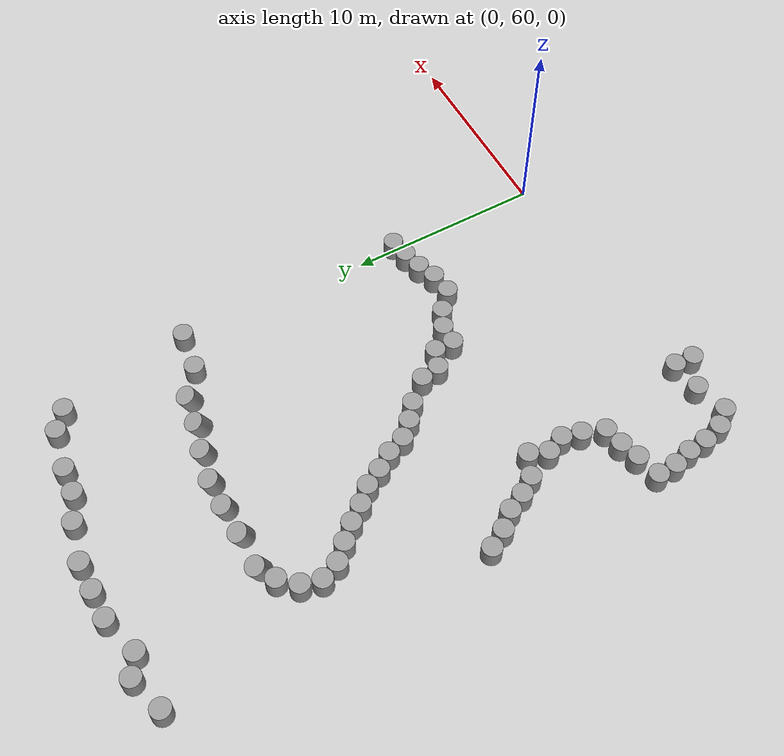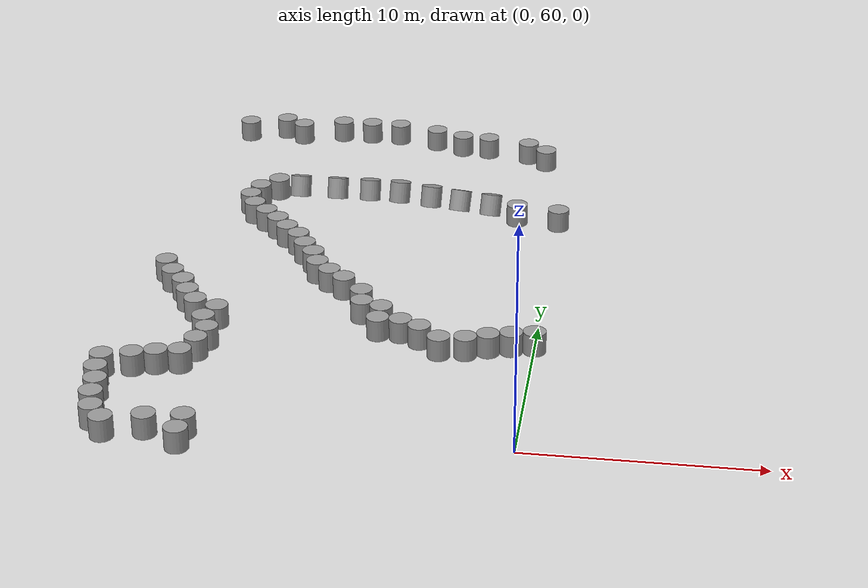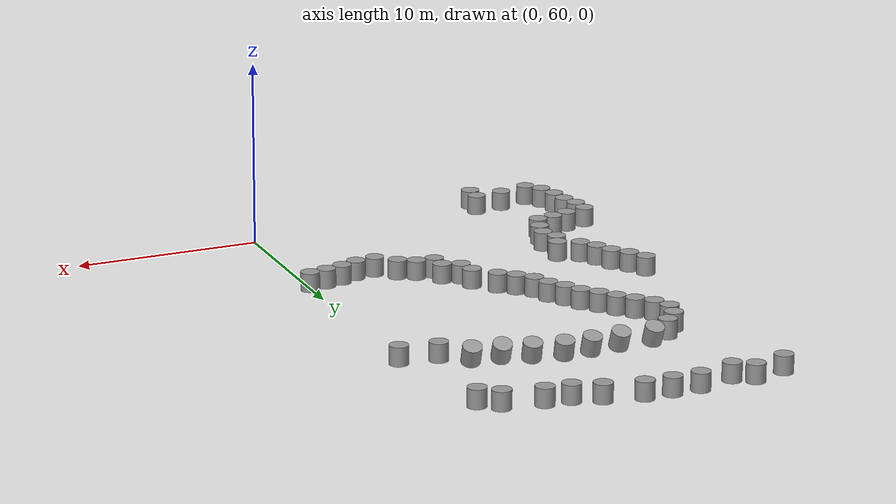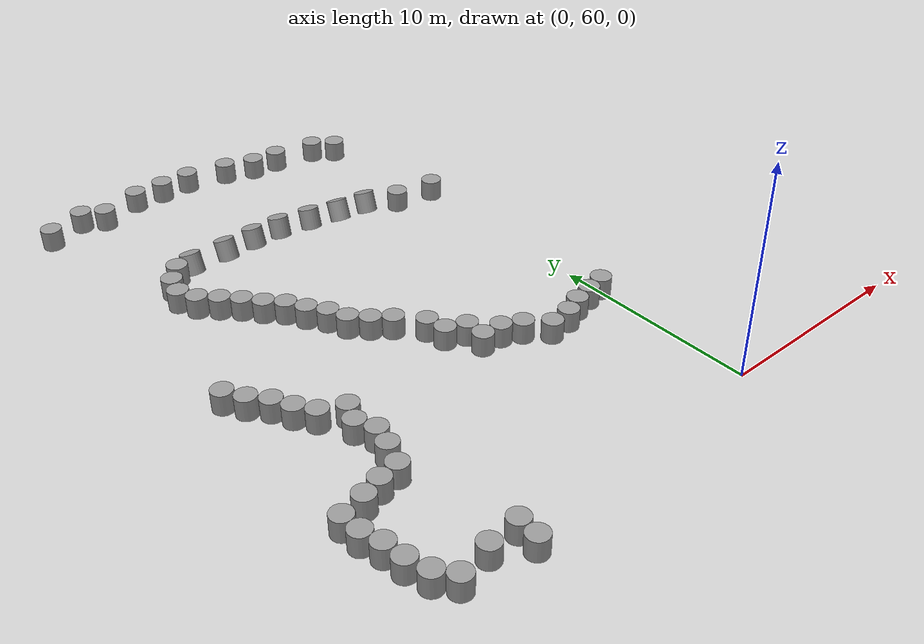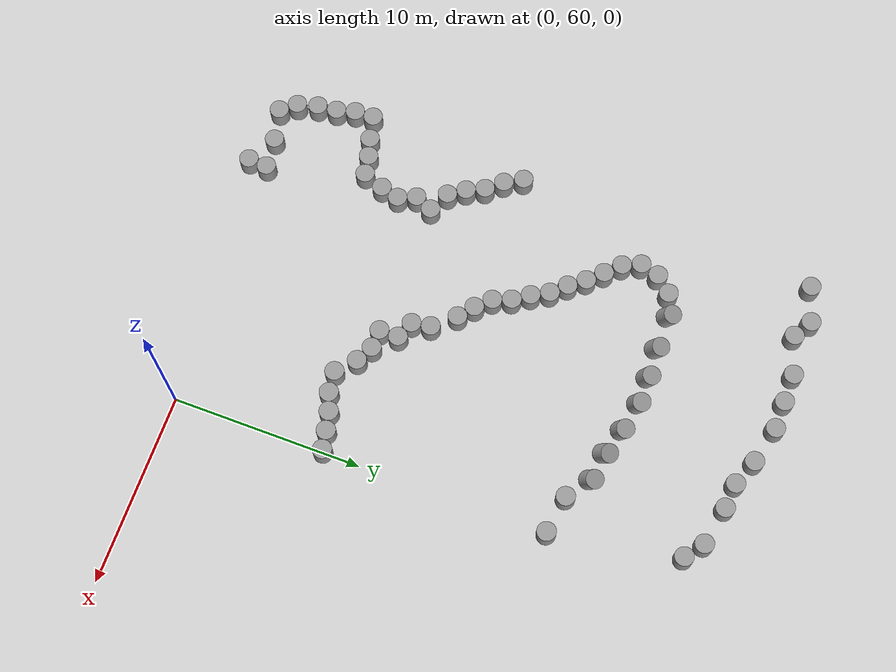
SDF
<sdf version="1.7">
 <world name="default">
  <model name="unit_cylinder">
   <pose>-13.2877 58.6137 0.450308 0.000621 0.000106 0.001685</pose>
   <link name="link">
    <inertial>
     <mass>1</mass>
     <inertia><ixx>0.145833</ixx><ixy>0</ixy><ixz>0</ixz><iyy>0.145833</iyy><iyz>0</iyz><izz>0.125</izz></inertia>
    </inertial>
    <collision name="collision">
     <geometry><cylinder><radius>0.5</radius><length>1</length></cylinder></geometry>
    </collision>
    <visual name="visual">
     <geometry><cylinder><radius>0.5</radius><length>1</length></cylinder></geometry>
     <material>
      <script><name>Gazebo/Grey</name><uri>file://media/materials/scripts/gazebo.material</uri></script>
     </material>
    </visual>
   </link>
  </model>
  <model name="unit_cylinder_0">
   <pose>-13.2319 59.6229 0.450974 0.000694 0.000109 -0.000125</pose>
   <link name="link">
    <inertial>
     <mass>1</mass>
     <inertia><ixx>0.145833</ixx><ixy>0</ixy><ixz>0</ixz><iyy>0.145833</iyy><iyz>0</iyz><izz>0.125</izz></inertia>
    </inertial>
    <collision name="collision">
     <geometry><cylinder><radius>0.5</radius><length>1</length></cylinder></geometry>
    </collision>
    <visual name="visual">
     <geometry><cylinder><radius>0.5</radius><length>1</length></cylinder></geometry>
     <material>
      <script><name>Gazebo/Grey</name><uri>file://media/materials/scripts/gazebo.material</uri></script>
     </material>
    </visual>
   </link>
  </model>
  <model name="unit_cylinder_1">
   <pose>-14.8042 59.4447 0.451031 0.00068 0.000119 -0</pose>
   <link name="link">
    <inertial>
     <mass>1</mass>
     <inertia><ixx>0.145833</ixx><ixy>0</ixy><ixz>0</ixz><iyy>0.145833</iyy><iyz>0</iyz><izz>0.125</izz></inertia>
    </inertial>
    <collision name="collision">
     <geometry><cylinder><radius>0.5</radius><length>1</length></cylinder></geometry>
    </collision>
    <visual name="visual">
     <geometry><cylinder><radius>0.5</radius><length>1</length></cylinder></geometry>
     <material>
      <script><name>Gazebo/Grey</name><uri>file://media/materials/scripts/gazebo.material</uri></script>
     </material>
    </visual>
   </link>
  </model>
  <model name="unit_cylinder_2">
   <pose>-16.4622 59.0425 0.451021 0.000586 0.000205 -0.010843</pose>
   <link name="link">
    <inertial>
     <mass>1</mass>
     <inertia><ixx>0.145833</ixx><ixy>0</ixy><ixz>0</ixz><iyy>0.145833</iyy><iyz>0</iyz><izz>0.125</izz></inertia>
    </inertial>
    <collision name="collision">
     <geometry><cylinder><radius>0.5</radius><length>1</length></cylinder></geometry>
    </collision>
    <visual name="visual">
     <geometry><cylinder><radius>0.5</radius><length>1</length></cylinder></geometry>
     <material>
      <script><name>Gazebo/Grey</name><uri>file://media/materials/scripts/gazebo.material</uri></script>
     </material>
    </visual>
   </link>
  </model>
  <model name="unit_cylinder_3">
   <pose>-17.089 59.8221 0.451267 3.1e-05 -0.000119 -0.019749</pose>
   <link name="link">
    <inertial>
     <mass>1</mass>
     <inertia><ixx>0.145833</ixx><ixy>0</ixy><ixz>0</ixz><iyy>0.145833</iyy><iyz>0</iyz><izz>0.125</izz></inertia>
    </inertial>
    <collision name="collision">
     <geometry><cylinder><radius>0.5</radius><length>1</length></cylinder></geometry>
    </collision>
    <visual name="visual">
     <geometry><cylinder><radius>0.5</radius><length>1</length></cylinder></geometry>
     <material>
      <script><name>Gazebo/Grey</name><uri>file://media/materials/scripts/gazebo.material</uri></script>
     </material>
    </visual>
   </link>
  </model>
  <model name="unit_cylinder_4">
   <pose>-17.3881 60.8702 0.451265 3.2e-05 -0.000118 -6e-06</pose>
   <link name="link">
    <inertial>
     <mass>1</mass>
     <inertia><ixx>0.145833</ixx><ixy>0</ixy><ixz>0</ixz><iyy>0.145833</iyy><iyz>0</iyz><izz>0.125</izz></inertia>
    </inertial>
    <collision name="collision">
     <geometry><cylinder><radius>0.5</radius><length>1</length></cylinder></geometry>
    </collision>
    <visual name="visual">
     <geometry><cylinder><radius>0.5</radius><length>1</length></cylinder></geometry>
     <material>
      <script><name>Gazebo/Grey</name><uri>file://media/materials/scripts/gazebo.material</uri></script>
     </material>
    </visual>
   </link>
  </model>
  <model name="unit_cylinder_5">
   <pose>-17.5055 61.8917 0.451286 3.7e-05 -0.000119 0.004439</pose>
   <link name="link">
    <inertial>
     <mass>1</mass>
     <inertia><ixx>0.145833</ixx><ixy>0</ixy><ixz>0</ixz><iyy>0.145833</iyy><iyz>0</iyz><izz>0.125</izz></inertia>
    </inertial>
    <collision name="collision">
     <geometry><cylinder><radius>0.5</radius><length>1</length></cylinder></geometry>
    </collision>
    <visual name="visual">
     <geometry><cylinder><radius>0.5</radius><length>1</length></cylinder></geometry>
     <material>
      <script><name>Gazebo/Grey</name><uri>file://media/materials/scripts/gazebo.material</uri></script>
     </material>
    </visual>
   </link>
  </model>
  <model name="unit_cylinder_6">
   <pose>-17.7698 62.8564 0.451298 3.5e-05 -0.000105 0.000889</pose>
   <link name="link">
    <inertial>
     <mass>1</mass>
     <inertia><ixx>0.145833</ixx><ixy>0</ixy><ixz>0</ixz><iyy>0.145833</iyy><iyz>0</iyz><izz>0.125</izz></inertia>
    </inertial>
    <collision name="collision">
     <geometry><cylinder><radius>0.5</radius><length>1</length></cylinder></geometry>
    </collision>
    <visual name="visual">
     <geometry><cylinder><radius>0.5</radius><length>1</length></cylinder></geometry>
     <material>
      <script><name>Gazebo/Grey</name><uri>file://media/materials/scripts/gazebo.material</uri></script>
     </material>
    </visual>
   </link>
  </model>
  <model name="unit_cylinder_7">
   <pose>-17.8148 63.8554 0.45132 -6e-06 -1.4e-05 -0.001069</pose>
   <link name="link">
    <inertial>
     <mass>1</mass>
     <inertia><ixx>0.145833</ixx><ixy>0</ixy><ixz>0</ixz><iyy>0.145833</iyy><iyz>0</iyz><izz>0.125</izz></inertia>
    </inertial>
    <collision name="collision">
     <geometry><cylinder><radius>0.5</radius><length>1</length></cylinder></geometry>
    </collision>
    <visual name="visual">
     <geometry><cylinder><radius>0.5</radius><length>1</length></cylinder></geometry>
     <material>
      <script><name>Gazebo/Grey</name><uri>file://media/materials/scripts/gazebo.material</uri></script>
     </material>
    </visual>
   </link>
  </model>
  <model name="unit_cylinder_8">
   <pose>-16.5871 64.1577 0.451324 2e-06 -1e-06 -0.00302</pose>
   <link name="link">
    <inertial>
     <mass>1</mass>
     <inertia><ixx>0.145833</ixx><ixy>0</ixy><ixz>0</ixz><iyy>0.145833</iyy><iyz>0</iyz><izz>0.125</izz></inertia>
    </inertial>
    <collision name="collision">
     <geometry><cylinder><radius>0.5</radius><length>1</length></cylinder></geometry>
    </collision>
    <visual name="visual">
     <geometry><cylinder><radius>0.5</radius><length>1</length></cylinder></geometry>
     <material>
      <script><name>Gazebo/Grey</name><uri>file://media/materials/scripts/gazebo.material</uri></script>
     </material>
    </visual>
   </link>
  </model>
  <model name="unit_cylinder_9">
   <pose>-15.6312 64.4525 0.451317 -2e-06 2e-06 0.01303</pose>
   <link name="link">
    <inertial>
     <mass>1</mass>
     <inertia><ixx>0.145833</ixx><ixy>0</ixy><ixz>0</ixz><iyy>0.145833</iyy><iyz>0</iyz><izz>0.125</izz></inertia>
    </inertial>
    <collision name="collision">
     <geometry><cylinder><radius>0.5</radius><length>1</length></cylinder></geometry>
    </collision>
    <visual name="visual">
     <geometry><cylinder><radius>0.5</radius><length>1</length></cylinder></geometry>
     <material>
      <script><name>Gazebo/Grey</name><uri>file://media/materials/scripts/gazebo.material</uri></script>
     </material>
    </visual>
   </link>
  </model>
  <model name="unit_cylinder_10">
   <pose>-14.6467 64.6451 0.451318 0 3e-06 0.004446</pose>
   <link name="link">
    <inertial>
     <mass>1</mass>
     <inertia><ixx>0.145833</ixx><ixy>0</ixy><ixz>0</ixz><iyy>0.145833</iyy><iyz>0</iyz><izz>0.125</izz></inertia>
    </inertial>
    <collision name="collision">
     <geometry><cylinder><radius>0.5</radius><length>1</length></cylinder></geometry>
    </collision>
    <visual name="visual">
     <geometry><cylinder><radius>0.5</radius><length>1</length></cylinder></geometry>
     <material>
      <script><name>Gazebo/Grey</name><uri>file://media/materials/scripts/gazebo.material</uri></script>
     </material>
    </visual>
   </link>
  </model>
  <model name="unit_cylinder_11">
   <pose>-14.2367 65.749 0.450048 0.008672 0.007504 1.33666</pose>
   <link name="link">
    <inertial>
     <mass>1</mass>
     <inertia><ixx>0.145833</ixx><ixy>0</ixy><ixz>0</ixz><iyy>0.145833</iyy><iyz>0</iyz><izz>0.125</izz></inertia>
    </inertial>
    <collision name="collision">
     <geometry><cylinder><radius>0.5</radius><length>1</length></cylinder></geometry>
    </collision>
    <visual name="visual">
     <geometry><cylinder><radius>0.5</radius><length>1</length></cylinder></geometry>
     <material>
      <script><name>Gazebo/Grey</name><uri>file://media/materials/scripts/gazebo.material</uri></script>
     </material>
    </visual>
   </link>
  </model>
  <model name="unit_cylinder_12">
   <pose>-13.9889 66.7178 0.442074 -0.010171 0.005345 -0.60893</pose>
   <link name="link">
    <inertial>
     <mass>1</mass>
     <inertia><ixx>0.145833</ixx><ixy>0</ixy><ixz>0</ixz><iyy>0.145833</iyy><iyz>0</iyz><izz>0.125</izz></inertia>
    </inertial>
    <collision name="collision">
     <geometry><cylinder><radius>0.5</radius><length>1</length></cylinder></geometry>
    </collision>
    <visual name="visual">
     <geometry><cylinder><radius>0.5</radius><length>1</length></cylinder></geometry>
     <material>
      <script><name>Gazebo/Grey</name><uri>file://media/materials/scripts/gazebo.material</uri></script>
     </material>
    </visual>
   </link>
  </model>
  <model name="unit_cylinder_13">
   <pose>-14.3597 67.6466 0.44449 -0.004148 0.00065 -0.767738</pose>
   <link name="link">
    <inertial>
     <mass>1</mass>
     <inertia><ixx>0.145833</ixx><ixy>0</ixy><ixz>0</ixz><iyy>0.145833</iyy><iyz>0</iyz><izz>0.125</izz></inertia>
    </inertial>
    <collision name="collision">
     <geometry><cylinder><radius>0.5</radius><length>1</length></cylinder></geometry>
    </collision>
    <visual name="visual">
     <geometry><cylinder><radius>0.5</radius><length>1</length></cylinder></geometry>
     <material>
      <script><name>Gazebo/Grey</name><uri>file://media/materials/scripts/gazebo.material</uri></script>
     </material>
    </visual>
   </link>
  </model>
  <model name="unit_cylinder_14">
   <pose>-13.9774 68.5707 0.451699 -0.001057 0.004203 0.346594</pose>
   <link name="link">
    <inertial>
     <mass>1</mass>
     <inertia><ixx>0.145833</ixx><ixy>0</ixy><ixz>0</ixz><iyy>0.145833</iyy><iyz>0</iyz><izz>0.125</izz></inertia>
    </inertial>
    <collision name="collision">
     <geometry><cylinder><radius>0.5</radius><length>1</length></cylinder></geometry>
    </collision>
    <visual name="visual">
     <geometry><cylinder><radius>0.5</radius><length>1</length></cylinder></geometry>
     <material>
      <script><name>Gazebo/Grey</name><uri>file://media/materials/scripts/gazebo.material</uri></script>
     </material>
    </visual>
   </link>
  </model>
  <model name="unit_cylinder_15">
   <pose>-15.0704 69.1016 0.447427 0.002984 -0.002078 0.265853</pose>
   <link name="link">
    <inertial>
     <mass>1</mass>
     <inertia><ixx>0.145833</ixx><ixy>0</ixy><ixz>0</ixz><iyy>0.145833</iyy><iyz>0</iyz><izz>0.125</izz></inertia>
    </inertial>
    <collision name="collision">
     <geometry><cylinder><radius>0.5</radius><length>1</length></cylinder></geometry>
    </collision>
    <visual name="visual">
     <geometry><cylinder><radius>0.5</radius><length>1</length></cylinder></geometry>
     <material>
      <script><name>Gazebo/Grey</name><uri>file://media/materials/scripts/gazebo.material</uri></script>
     </material>
    </visual>
   </link>
  </model>
  <model name="unit_cylinder_16">
   <pose>-15.6303 69.9302 0.448226 0.002522 -0.000953 0.309914</pose>
   <link name="link">
    <inertial>
     <mass>1</mass>
     <inertia><ixx>0.145833</ixx><ixy>0</ixy><ixz>0</ixz><iyy>0.145833</iyy><iyz>0</iyz><izz>0.125</izz></inertia>
    </inertial>
    <collision name="collision">
     <geometry><cylinder><radius>0.5</radius><length>1</length></cylinder></geometry>
    </collision>
    <visual name="visual">
     <geometry><cylinder><radius>0.5</radius><length>1</length></cylinder></geometry>
     <material>
      <script><name>Gazebo/Grey</name><uri>file://media/materials/scripts/gazebo.material</uri></script>
     </material>
    </visual>
   </link>
  </model>
  <model name="unit_cylinder_17">
   <pose>-16.055 70.8371 0.449279 0.00276 -0.003907 -0.014795</pose>
   <link name="link">
    <inertial>
     <mass>1</mass>
     <inertia><ixx>0.145833</ixx><ixy>0</ixy><ixz>0</ixz><iyy>0.145833</iyy><iyz>0</iyz><izz>0.125</izz></inertia>
    </inertial>
    <collision name="collision">
     <geometry><cylinder><radius>0.5</radius><length>1</length></cylinder></geometry>
    </collision>
    <visual name="visual">
     <geometry><cylinder><radius>0.5</radius><length>1</length></cylinder></geometry>
     <material>
      <script><name>Gazebo/Grey</name><uri>file://media/materials/scripts/gazebo.material</uri></script>
     </material>
    </visual>
   </link>
  </model>
  <model name="unit_cylinder_18">
   <pose>-16.7299 71.6265 0.450127 0.000598 -0.000177 0.004047</pose>
   <link name="link">
    <inertial>
     <mass>1</mass>
     <inertia><ixx>0.145833</ixx><ixy>0</ixy><ixz>0</ixz><iyy>0.145833</iyy><iyz>0</iyz><izz>0.125</izz></inertia>
    </inertial>
    <collision name="collision">
     <geometry><cylinder><radius>0.5</radius><length>1</length></cylinder></geometry>
    </collision>
    <visual name="visual">
     <geometry><cylinder><radius>0.5</radius><length>1</length></cylinder></geometry>
     <material>
      <script><name>Gazebo/Grey</name><uri>file://media/materials/scripts/gazebo.material</uri></script>
     </material>
    </visual>
   </link>
  </model>
  <model name="unit_cylinder_19">
   <pose>-17.2532 72.5422 0.450888 0.000516 -0.000755 -5.7e-05</pose>
   <link name="link">
    <inertial>
     <mass>1</mass>
     <inertia><ixx>0.145833</ixx><ixy>0</ixy><ixz>0</ixz><iyy>0.145833</iyy><iyz>0</iyz><izz>0.125</izz></inertia>
    </inertial>
    <collision name="collision">
     <geometry><cylinder><radius>0.5</radius><length>1</length></cylinder></geometry>
    </collision>
    <visual name="visual">
     <geometry><cylinder><radius>0.5</radius><length>1</length></cylinder></geometry>
     <material>
      <script><name>Gazebo/Grey</name><uri>file://media/materials/scripts/gazebo.material</uri></script>
     </material>
    </visual>
   </link>
  </model>
  <model name="unit_cylinder_34">
   <pose>-16.8325 88.4309 0.453164 0.004475 0.00168 -0.186595</pose>
   <link name="link">
    <inertial>
     <mass>1</mass>
     <inertia><ixx>0.145833</ixx><ixy>0</ixy><ixz>0</ixz><iyy>0.145833</iyy><iyz>0</iyz><izz>0.125</izz></inertia>
    </inertial>
    <collision name="collision">
     <geometry><cylinder><radius>0.5</radius><length>1</length></cylinder></geometry>
    </collision>
    <visual name="visual">
     <geometry><cylinder><radius>0.5</radius><length>1</length></cylinder></geometry>
     <material>
      <script><name>Gazebo/Grey</name><uri>file://media/materials/scripts/gazebo.material</uri></script>
     </material>
    </visual>
   </link>
  </model>
  <model name="unit_cylinder_35">
   <pose>-12.5083 76.6796 0.451255 -2.7e-05 1.7e-05 -0.022025</pose>
   <link name="link">
    <inertial>
     <mass>1</mass>
     <inertia><ixx>0.145833</ixx><ixy>0</ixy><ixz>0</ixz><iyy>0.145833</iyy><iyz>0</iyz><izz>0.125</izz></inertia>
    </inertial>
    <collision name="collision">
     <geometry><cylinder><radius>0.5</radius><length>1</length></cylinder></geometry>
    </collision>
    <visual name="visual">
     <geometry><cylinder><radius>0.5</radius><length>1</length></cylinder></geometry>
     <material>
      <script><name>Gazebo/Grey</name><uri>file://media/materials/scripts/gazebo.material</uri></script>
     </material>
    </visual>
   </link>
  </model>
  <model name="unit_cylinder_36">
   <pose>-13.1208 77.4755 0.451262 -1.6e-05 2.6e-05 0.080301</pose>
   <link name="link">
    <inertial>
     <mass>1</mass>
     <inertia><ixx>0.145833</ixx><ixy>0</ixy><ixz>0</ixz><iyy>0.145833</iyy><iyz>0</iyz><izz>0.125</izz></inertia>
    </inertial>
    <collision name="collision">
     <geometry><cylinder><radius>0.5</radius><length>1</length></cylinder></geometry>
    </collision>
    <visual name="visual">
     <geometry><cylinder><radius>0.5</radius><length>1</length></cylinder></geometry>
     <material>
      <script><name>Gazebo/Grey</name><uri>file://media/materials/scripts/gazebo.material</uri></script>
     </material>
    </visual>
   </link>
  </model>
  <model name="unit_cylinder_37">
   <pose>-13.8134 78.2059 0.451267 -2.7e-05 3.7e-05 -0.002243</pose>
   <link name="link">
    <inertial>
     <mass>1</mass>
     <inertia><ixx>0.145833</ixx><ixy>0</ixy><ixz>0</ixz><iyy>0.145833</iyy><iyz>0</iyz><izz>0.125</izz></inertia>
    </inertial>
    <collision name="collision">
     <geometry><cylinder><radius>0.5</radius><length>1</length></cylinder></geometry>
    </collision>
    <visual name="visual">
     <geometry><cylinder><radius>0.5</radius><length>1</length></cylinder></geometry>
     <material>
      <script><name>Gazebo/Grey</name><uri>file://media/materials/scripts/gazebo.material</uri></script>
     </material>
    </visual>
   </link>
  </model>
  <model name="unit_cylinder_38">
   <pose>-14.537 78.9318 0.451274 -4.1e-05 7.2e-05 -0.001766</pose>
   <link name="link">
    <inertial>
     <mass>1</mass>
     <inertia><ixx>0.145833</ixx><ixy>0</ixy><ixz>0</ixz><iyy>0.145833</iyy><iyz>0</iyz><izz>0.125</izz></inertia>
    </inertial>
    <collision name="collision">
     <geometry><cylinder><radius>0.5</radius><length>1</length></cylinder></geometry>
    </collision>
    <visual name="visual">
     <geometry><cylinder><radius>0.5</radius><length>1</length></cylinder></geometry>
     <material>
      <script><name>Gazebo/Grey</name><uri>file://media/materials/scripts/gazebo.material</uri></script>
     </material>
    </visual>
   </link>
  </model>
  <model name="unit_cylinder_39">
   <pose>-14.9355 79.861 0.451264 -2e-05 3.8e-05 -0.021847</pose>
   <link name="link">
    <inertial>
     <mass>1</mass>
     <inertia><ixx>0.145833</ixx><ixy>0</ixy><ixz>0</ixz><iyy>0.145833</iyy><iyz>0</iyz><izz>0.125</izz></inertia>
    </inertial>
    <collision name="collision">
     <geometry><cylinder><radius>0.5</radius><length>1</length></cylinder></geometry>
    </collision>
    <visual name="visual">
     <geometry><cylinder><radius>0.5</radius><length>1</length></cylinder></geometry>
     <material>
      <script><name>Gazebo/Grey</name><uri>file://media/materials/scripts/gazebo.material</uri></script>
     </material>
    </visual>
   </link>
  </model>
  <model name="unit_cylinder_40">
   <pose>-14.6637 80.8568 0.451244 1e-06 1e-05 0.000432</pose>
   <link name="link">
    <inertial>
     <mass>1</mass>
     <inertia><ixx>0.145833</ixx><ixy>0</ixy><ixz>0</ixz><iyy>0.145833</iyy><iyz>0</iyz><izz>0.125</izz></inertia>
    </inertial>
    <collision name="collision">
     <geometry><cylinder><radius>0.5</radius><length>1</length></cylinder></geometry>
    </collision>
    <visual name="visual">
     <geometry><cylinder><radius>0.5</radius><length>1</length></cylinder></geometry>
     <material>
      <script><name>Gazebo/Grey</name><uri>file://media/materials/scripts/gazebo.material</uri></script>
     </material>
    </visual>
   </link>
  </model>
  <model name="unit_cylinder_41">
   <pose>-13.9151 81.6756 0.451264 6.1e-05 8e-06 0.001789</pose>
   <link name="link">
    <inertial>
     <mass>1</mass>
     <inertia><ixx>0.145833</ixx><ixy>0</ixy><ixz>0</ixz><iyy>0.145833</iyy><iyz>0</iyz><izz>0.125</izz></inertia>
    </inertial>
    <collision name="collision">
     <geometry><cylinder><radius>0.5</radius><length>1</length></cylinder></geometry>
    </collision>
    <visual name="visual">
     <geometry><cylinder><radius>0.5</radius><length>1</length></cylinder></geometry>
     <material>
      <script><name>Gazebo/Grey</name><uri>file://media/materials/scripts/gazebo.material</uri></script>
     </material>
    </visual>
   </link>
  </model>
  <model name="unit_cylinder_42">
   <pose>-12.9175 82.0752 0.393131 -0.356614 0.009683 0.021233</pose>
   <link name="link">
    <inertial>
     <mass>1</mass>
     <inertia><ixx>0.145833</ixx><ixy>0</ixy><ixz>0</ixz><iyy>0.145833</iyy><iyz>0</iyz><izz>0.125</izz></inertia>
    </inertial>
    <collision name="collision">
     <geometry><cylinder><radius>0.5</radius><length>1</length></cylinder></geometry>
    </collision>
    <visual name="visual">
     <geometry><cylinder><radius>0.5</radius><length>1</length></cylinder></geometry>
     <material>
      <script><name>Gazebo/Grey</name><uri>file://media/materials/scripts/gazebo.material</uri></script>
     </material>
    </visual>
   </link>
  </model>
  <model name="unit_cylinder_43">
   <pose>-11.8223 75.9519 0.451248 1e-06 -4e-06 -0.020972</pose>
   <link name="link">
    <inertial>
     <mass>1</mass>
     <inertia><ixx>0.145833</ixx><ixy>0</ixy><ixz>0</ixz><iyy>0.145833</iyy><iyz>0</iyz><izz>0.125</izz></inertia>
    </inertial>
    <collision name="collision">
     <geometry><cylinder><radius>0.5</radius><length>1</length></cylinder></geometry>
    </collision>
    <visual name="visual">
     <geometry><cylinder><radius>0.5</radius><length>1</length></cylinder></geometry>
     <material>
      <script><name>Gazebo/Grey</name><uri>file://media/materials/scripts/gazebo.material</uri></script>
     </material>
    </visual>
   </link>
  </model>
  <model name="unit_cylinder_44">
   <pose>-11.3444 75.0735 0.451256 -1.6e-05 2.1e-05 -0.008671</pose>
   <link name="link">
    <inertial>
     <mass>1</mass>
     <inertia><ixx>0.145833</ixx><ixy>0</ixy><ixz>0</ixz><iyy>0.145833</iyy><iyz>0</iyz><izz>0.125</izz></inertia>
    </inertial>
    <collision name="collision">
     <geometry><cylinder><radius>0.5</radius><length>1</length></cylinder></geometry>
    </collision>
    <visual name="visual">
     <geometry><cylinder><radius>0.5</radius><length>1</length></cylinder></geometry>
     <material>
      <script><name>Gazebo/Grey</name><uri>file://media/materials/scripts/gazebo.material</uri></script>
     </material>
    </visual>
   </link>
  </model>
  <model name="unit_cylinder_45">
   <pose>-10.7823 74.2444 0.451264 -1.4e-05 2.1e-05 0.062925</pose>
   <link name="link">
    <inertial>
     <mass>1</mass>
     <inertia><ixx>0.145833</ixx><ixy>0</ixy><ixz>0</ixz><iyy>0.145833</iyy><iyz>0</iyz><izz>0.125</izz></inertia>
    </inertial>
    <collision name="collision">
     <geometry><cylinder><radius>0.5</radius><length>1</length></cylinder></geometry>
    </collision>
    <visual name="visual">
     <geometry><cylinder><radius>0.5</radius><length>1</length></cylinder></geometry>
     <material>
      <script><name>Gazebo/Grey</name><uri>file://media/materials/scripts/gazebo.material</uri></script>
     </material>
    </visual>
   </link>
  </model>
  <model name="unit_cylinder_46">
   <pose>-10.4174 73.3134 0.451268 -1.8e-05 2.4e-05 0.006692</pose>
   <link name="link">
    <inertial>
     <mass>1</mass>
     <inertia><ixx>0.145833</ixx><ixy>0</ixy><ixz>0</ixz><iyy>0.145833</iyy><iyz>0</iyz><izz>0.125</izz></inertia>
    </inertial>
    <collision name="collision">
     <geometry><cylinder><radius>0.5</radius><length>1</length></cylinder></geometry>
    </collision>
    <visual name="visual">
     <geometry><cylinder><radius>0.5</radius><length>1</length></cylinder></geometry>
     <material>
      <script><name>Gazebo/Grey</name><uri>file://media/materials/scripts/gazebo.material</uri></script>
     </material>
    </visual>
   </link>
  </model>
  <model name="unit_cylinder_47">
   <pose>-9.7287 72.5883 0.451269 -1e-05 1.5e-05 -0.033561</pose>
   <link name="link">
    <inertial>
     <mass>1</mass>
     <inertia><ixx>0.145833</ixx><ixy>0</ixy><ixz>0</ixz><iyy>0.145833</iyy><iyz>0</iyz><izz>0.125</izz></inertia>
    </inertial>
    <collision name="collision">
     <geometry><cylinder><radius>0.5</radius><length>1</length></cylinder></geometry>
    </collision>
    <visual name="visual">
     <geometry><cylinder><radius>0.5</radius><length>1</length></cylinder></geometry>
     <material>
      <script><name>Gazebo/Grey</name><uri>file://media/materials/scripts/gazebo.material</uri></script>
     </material>
    </visual>
   </link>
  </model>
  <model name="unit_cylinder_48">
   <pose>-8.95259 71.9577 0.451261 1e-06 1e-05 0.017317</pose>
   <link name="link">
    <inertial>
     <mass>1</mass>
     <inertia><ixx>0.145833</ixx><ixy>0</ixy><ixz>0</ixz><iyy>0.145833</iyy><iyz>0</iyz><izz>0.125</izz></inertia>
    </inertial>
    <collision name="collision">
     <geometry><cylinder><radius>0.5</radius><length>1</length></cylinder></geometry>
    </collision>
    <visual name="visual">
     <geometry><cylinder><radius>0.5</radius><length>1</length></cylinder></geometry>
     <material>
      <script><name>Gazebo/Grey</name><uri>file://media/materials/scripts/gazebo.material</uri></script>
     </material>
    </visual>
   </link>
  </model>
  <model name="unit_cylinder_49">
   <pose>-7.97474 70.862 0.447871 0.001215 0.009391 0.1193</pose>
   <link name="link">
    <inertial>
     <mass>1</mass>
     <inertia><ixx>0.145833</ixx><ixy>0</ixy><ixz>0</ixz><iyy>0.145833</iyy><iyz>0</iyz><izz>0.125</izz></inertia>
    </inertial>
    <collision name="collision">
     <geometry><cylinder><radius>0.5</radius><length>1</length></cylinder></geometry>
    </collision>
    <visual name="visual">
     <geometry><cylinder><radius>0.5</radius><length>1</length></cylinder></geometry>
     <material>
      <script><name>Gazebo/Grey</name><uri>file://media/materials/scripts/gazebo.material</uri></script>
     </material>
    </visual>
   </link>
  </model>
  <model name="unit_cylinder_50">
   <pose>-7.78796 69.8796 0.446326 -0.000557 0.008721 -0.088192</pose>
   <link name="link">
    <inertial>
     <mass>1</mass>
     <inertia><ixx>0.145833</ixx><ixy>0</ixy><ixz>0</ixz><iyy>0.145833</iyy><iyz>0</iyz><izz>0.125</izz></inertia>
    </inertial>
    <collision name="collision">
     <geometry><cylinder><radius>0.5</radius><length>1</length></cylinder></geometry>
    </collision>
    <visual name="visual">
     <geometry><cylinder><radius>0.5</radius><length>1</length></cylinder></geometry>
     <material>
      <script><name>Gazebo/Grey</name><uri>file://media/materials/scripts/gazebo.material</uri></script>
     </material>
    </visual>
   </link>
  </model>
  <model name="unit_cylinder_51">
   <pose>-6.86321 69.499 0.442492 0.009146 -0.003673 0.965866</pose>
   <link name="link">
    <inertial>
     <mass>1</mass>
     <inertia><ixx>0.145833</ixx><ixy>0</ixy><ixz>0</ixz><iyy>0.145833</iyy><iyz>0</iyz><izz>0.125</izz></inertia>
    </inertial>
    <collision name="collision">
     <geometry><cylinder><radius>0.5</radius><length>1</length></cylinder></geometry>
    </collision>
    <visual name="visual">
     <geometry><cylinder><radius>0.5</radius><length>1</length></cylinder></geometry>
     <material>
      <script><name>Gazebo/Grey</name><uri>file://media/materials/scripts/gazebo.material</uri></script>
     </material>
    </visual>
   </link>
  </model>
  <model name="unit_cylinder_52">
   <pose>-6.84671 68.4959 0.438635 0.015809 -0.006475 -0.107076</pose>
   <link name="link">
    <inertial>
     <mass>1</mass>
     <inertia><ixx>0.145833</ixx><ixy>0</ixy><ixz>0</ixz><iyy>0.145833</iyy><iyz>0</iyz><izz>0.125</izz></inertia>
    </inertial>
    <collision name="collision">
     <geometry><cylinder><radius>0.5</radius><length>1</length></cylinder></geometry>
    </collision>
    <visual name="visual">
     <geometry><cylinder><radius>0.5</radius><length>1</length></cylinder></geometry>
     <material>
      <script><name>Gazebo/Grey</name><uri>file://media/materials/scripts/gazebo.material</uri></script>
     </material>
    </visual>
   </link>
  </model>
  <model name="unit_cylinder_53">
   <pose>-5.8475 68.4559 0.440829 -0.000809 -0.00788 0.380203</pose>
   <link name="link">
    <inertial>
     <mass>1</mass>
     <inertia><ixx>0.145833</ixx><ixy>0</ixy><ixz>0</ixz><iyy>0.145833</iyy><iyz>0</iyz><izz>0.125</izz></inertia>
    </inertial>
    <collision name="collision">
     <geometry><cylinder><radius>0.5</radius><length>1</length></cylinder></geometry>
    </collision>
    <visual name="visual">
     <geometry><cylinder><radius>0.5</radius><length>1</length></cylinder></geometry>
     <material>
      <script><name>Gazebo/Grey</name><uri>file://media/materials/scripts/gazebo.material</uri></script>
     </material>
    </visual>
   </link>
  </model>
  <model name="unit_cylinder_54">
   <pose>-4.95694 68.0011 0.446621 0.002569 -0.007493 -0.052175</pose>
   <link name="link">
    <inertial>
     <mass>1</mass>
     <inertia><ixx>0.145833</ixx><ixy>0</ixy><ixz>0</ixz><iyy>0.145833</iyy><iyz>0</iyz><izz>0.125</izz></inertia>
    </inertial>
    <collision name="collision">
     <geometry><cylinder><radius>0.5</radius><length>1</length></cylinder></geometry>
    </collision>
    <visual name="visual">
     <geometry><cylinder><radius>0.5</radius><length>1</length></cylinder></geometry>
     <material>
      <script><name>Gazebo/Grey</name><uri>file://media/materials/scripts/gazebo.material</uri></script>
     </material>
    </visual>
   </link>
  </model>
  <model name="unit_cylinder_55">
   <pose>-4.0118 67.1475 0.451284 0 -6e-06 -1e-06</pose>
   <link name="link">
    <inertial>
     <mass>1</mass>
     <inertia><ixx>0.145833</ixx><ixy>0</ixy><ixz>0</ixz><iyy>0.145833</iyy><iyz>0</iyz><izz>0.125</izz></inertia>
    </inertial>
    <collision name="collision">
     <geometry><cylinder><radius>0.5</radius><length>1</length></cylinder></geometry>
    </collision>
    <visual name="visual">
     <geometry><cylinder><radius>0.5</radius><length>1</length></cylinder></geometry>
     <material>
      <script><name>Gazebo/Grey</name><uri>file://media/materials/scripts/gazebo.material</uri></script>
     </material>
    </visual>
   </link>
  </model>
  <model name="unit_cylinder_56">
   <pose>-2.88538 67.2905 0.451279 0 1e-06 -0.001361</pose>
   <link name="link">
    <inertial>
     <mass>1</mass>
     <inertia><ixx>0.145833</ixx><ixy>0</ixy><ixz>0</ixz><iyy>0.145833</iyy><iyz>0</iyz><izz>0.125</izz></inertia>
    </inertial>
    <collision name="collision">
     <geometry><cylinder><radius>0.5</radius><length>1</length></cylinder></geometry>
    </collision>
    <visual name="visual">
     <geometry><cylinder><radius>0.5</radius><length>1</length></cylinder></geometry>
     <material>
      <script><name>Gazebo/Grey</name><uri>file://media/materials/scripts/gazebo.material</uri></script>
     </material>
    </visual>
   </link>
  </model>
  <model name="unit_cylinder_57">
   <pose>-1.95558 67.6586 0.451281 5e-06 3e-06 0.028029</pose>
   <link name="link">
    <inertial>
     <mass>1</mass>
     <inertia><ixx>0.145833</ixx><ixy>0</ixy><ixz>0</ixz><iyy>0.145833</iyy><iyz>0</iyz><izz>0.125</izz></inertia>
    </inertial>
    <collision name="collision">
     <geometry><cylinder><radius>0.5</radius><length>1</length></cylinder></geometry>
    </collision>
    <visual name="visual">
     <geometry><cylinder><radius>0.5</radius><length>1</length></cylinder></geometry>
     <material>
      <script><name>Gazebo/Grey</name><uri>file://media/materials/scripts/gazebo.material</uri></script>
     </material>
    </visual>
   </link>
  </model>
  <model name="unit_cylinder_58">
   <pose>-0.982608 67.8954 0.451281 2e-06 3e-06 0.042812</pose>
   <link name="link">
    <inertial>
     <mass>1</mass>
     <inertia><ixx>0.145833</ixx><ixy>0</ixy><ixz>0</ixz><iyy>0.145833</iyy><iyz>0</iyz><izz>0.125</izz></inertia>
    </inertial>
    <collision name="collision">
     <geometry><cylinder><radius>0.5</radius><length>1</length></cylinder></geometry>
    </collision>
    <visual name="visual">
     <geometry><cylinder><radius>0.5</radius><length>1</length></cylinder></geometry>
     <material>
      <script><name>Gazebo/Grey</name><uri>file://media/materials/scripts/gazebo.material</uri></script>
     </material>
    </visual>
   </link>
  </model>
  <model name="unit_cylinder_59">
   <pose>-6.2e-05 68.0831 0.451278 1e-06 2e-06 0.013408</pose>
   <link name="link">
    <inertial>
     <mass>1</mass>
     <inertia><ixx>0.145833</ixx><ixy>0</ixy><ixz>0</ixz><iyy>0.145833</iyy><iyz>0</iyz><izz>0.125</izz></inertia>
    </inertial>
    <collision name="collision">
     <geometry><cylinder><radius>0.5</radius><length>1</length></cylinder></geometry>
    </collision>
    <visual name="visual">
     <geometry><cylinder><radius>0.5</radius><length>1</length></cylinder></geometry>
     <material>
      <script><name>Gazebo/Grey</name><uri>file://media/materials/scripts/gazebo.material</uri></script>
     </material>
    </visual>
   </link>
  </model>
  <model name="unit_cylinder_85_clone_244_clone_192">
   <pose>-11.0624 82.062 0.394436 -0.361178 0.003793 0.005287</pose>
   <link name="link">
    <inertial>
     <mass>1</mass>
     <inertia><ixx>0.145833</ixx><ixy>0</ixy><ixz>0</ixz><iyy>0.145833</iyy><iyz>0</iyz><izz>0.125</izz></inertia>
    </inertial>
    <collision name="collision">
     <geometry><cylinder><radius>0.5</radius><length>1</length></cylinder></geometry>
    </collision>
    <visual name="visual">
     <geometry><cylinder><radius>0.5</radius><length>1</length></cylinder></geometry>
     <material>
      <script><name>Gazebo/Grey</name><uri>file://media/materials/scripts/gazebo.material</uri></script>
     </material>
    </visual>
   </link>
  </model>
  <model name="unit_cylinder_85_clone_244_clone_193">
   <pose>-9.45806 82.1403 0.374088 -0.295942 0.002773 0.004325</pose>
   <link name="link">
    <inertial>
     <mass>1</mass>
     <inertia><ixx>0.145833</ixx><ixy>0</ixy><ixz>0</ixz><iyy>0.145833</iyy><iyz>0</iyz><izz>0.125</izz></inertia>
    </inertial>
    <collision name="collision">
     <geometry><cylinder><radius>0.5</radius><length>1</length></cylinder></geometry>
    </collision>
    <visual name="visual">
     <geometry><cylinder><radius>0.5</radius><length>1</length></cylinder></geometry>
     <material>
      <script><name>Gazebo/Grey</name><uri>file://media/materials/scripts/gazebo.material</uri></script>
     </material>
    </visual>
   </link>
  </model>
  <model name="unit_cylinder_85_clone_244_clone_194">
   <pose>-7.97758 82.1298 0.367735 -0.273286 0.046997 -0.007047</pose>
   <link name="link">
    <inertial>
     <mass>1</mass>
     <inertia><ixx>0.145833</ixx><ixy>0</ixy><ixz>0</ixz><iyy>0.145833</iyy><iyz>0</iyz><izz>0.125</izz></inertia>
    </inertial>
    <collision name="collision">
     <geometry><cylinder><radius>0.5</radius><length>1</length></cylinder></geometry>
    </collision>
    <visual name="visual">
     <geometry><cylinder><radius>0.5</radius><length>1</length></cylinder></geometry>
     <material>
      <script><name>Gazebo/Grey</name><uri>file://media/materials/scripts/gazebo.material</uri></script>
     </material>
    </visual>
   </link>
  </model>
  <model name="unit_cylinder_85_clone_244_clone_195">
   <pose>-6.37511 81.8134 0.374081 -0.29163 0.051003 -0.004897</pose>
   <link name="link">
    <inertial>
     <mass>1</mass>
     <inertia><ixx>0.145833</ixx><ixy>0</ixy><ixz>0</ixz><iyy>0.145833</iyy><iyz>0</iyz><izz>0.125</izz></inertia>
    </inertial>
    <collision name="collision">
     <geometry><cylinder><radius>0.5</radius><length>1</length></cylinder></geometry>
    </collision>
    <visual name="visual">
     <geometry><cylinder><radius>0.5</radius><length>1</length></cylinder></geometry>
     <material>
      <script><name>Gazebo/Grey</name><uri>file://media/materials/scripts/gazebo.material</uri></script>
     </material>
    </visual>
   </link>
  </model>
  <model name="unit_cylinder_85_clone_244_clone_196">
   <pose>-4.89557 81.412 0.415863 -0.435534 0.078882 -0.005393</pose>
   <link name="link">
    <inertial>
     <mass>1</mass>
     <inertia><ixx>0.145833</ixx><ixy>0</ixy><ixz>0</ixz><iyy>0.145833</iyy><iyz>0</iyz><izz>0.125</izz></inertia>
    </inertial>
    <collision name="collision">
     <geometry><cylinder><radius>0.5</radius><length>1</length></cylinder></geometry>
    </collision>
    <visual name="visual">
     <geometry><cylinder><radius>0.5</radius><length>1</length></cylinder></geometry>
     <material>
      <script><name>Gazebo/Grey</name><uri>file://media/materials/scripts/gazebo.material</uri></script>
     </material>
    </visual>
   </link>
  </model>
  <model name="unit_cylinder_85_clone_244_clone_197">
   <pose>-3.37427 81.1901 0.397898 -0.366592 0.071913 0.011875</pose>
   <link name="link">
    <inertial>
     <mass>1</mass>
     <inertia><ixx>0.145833</ixx><ixy>0</ixy><ixz>0</ixz><iyy>0.145833</iyy><iyz>0</iyz><izz>0.125</izz></inertia>
    </inertial>
    <collision name="collision">
     <geometry><cylinder><radius>0.5</radius><length>1</length></cylinder></geometry>
    </collision>
    <visual name="visual">
     <geometry><cylinder><radius>0.5</radius><length>1</length></cylinder></geometry>
     <material>
      <script><name>Gazebo/Grey</name><uri>file://media/materials/scripts/gazebo.material</uri></script>
     </material>
    </visual>
   </link>
  </model>
  <model name="unit_cylinder_85_clone_244_clone_198">
   <pose>-2.00601 80.2948 0.451271 1e-05 -1e-06 -0.001913</pose>
   <link name="link">
    <inertial>
     <mass>1</mass>
     <inertia><ixx>0.145833</ixx><ixy>0</ixy><ixz>0</ixz><iyy>0.145833</iyy><iyz>0</iyz><izz>0.125</izz></inertia>
    </inertial>
    <collision name="collision">
     <geometry><cylinder><radius>0.5</radius><length>1</length></cylinder></geometry>
    </collision>
    <visual name="visual">
     <geometry><cylinder><radius>0.5</radius><length>1</length></cylinder></geometry>
     <material>
      <script><name>Gazebo/Grey</name><uri>file://media/materials/scripts/gazebo.material</uri></script>
     </material>
    </visual>
   </link>
  </model>
  <model name="unit_cylinder_85_clone_244_clone_202">
   <pose>1.8e-05 80 0.451277 -0.000122 5.2e-05 0.00028</pose>
   <link name="link">
    <inertial>
     <mass>1</mass>
     <inertia><ixx>0.145833</ixx><ixy>0</ixy><ixz>0</ixz><iyy>0.145833</iyy><iyz>0</iyz><izz>0.125</izz></inertia>
    </inertial>
    <collision name="collision">
     <geometry><cylinder><radius>0.5</radius><length>1</length></cylinder></geometry>
    </collision>
    <visual name="visual">
     <geometry><cylinder><radius>0.5</radius><length>1</length></cylinder></geometry>
     <material>
      <script><name>Gazebo/Grey</name><uri>file://media/materials/scripts/gazebo.material</uri></script>
     </material>
    </visual>
   </link>
  </model>
  <model name="unit_cylinder_85_clone_244_clone_228">
   <pose>-1.18977 86.761 0.452051 0.004346 -0.000946 -0.001931</pose>
   <link name="link">
    <inertial>
     <mass>1</mass>
     <inertia><ixx>0.145833</ixx><ixy>0</ixy><ixz>0</ixz><iyy>0.145833</iyy><iyz>0</iyz><izz>0.125</izz></inertia>
    </inertial>
    <collision name="collision">
     <geometry><cylinder><radius>0.5</radius><length>1</length></cylinder></geometry>
    </collision>
    <visual name="visual">
     <geometry><cylinder><radius>0.5</radius><length>1</length></cylinder></geometry>
     <material>
      <script><name>Gazebo/Grey</name><uri>file://media/materials/scripts/gazebo.material</uri></script>
     </material>
    </visual>
   </link>
  </model>
  <model name="unit_cylinder_85_clone_244_clone_229">
   <pose>-2.14963 87.4962 0.454349 0.005091 -0.001115 0.00062</pose>
   <link name="link">
    <inertial>
     <mass>1</mass>
     <inertia><ixx>0.145833</ixx><ixy>0</ixy><ixz>0</ixz><iyy>0.145833</iyy><iyz>0</iyz><izz>0.125</izz></inertia>
    </inertial>
    <collision name="collision">
     <geometry><cylinder><radius>0.5</radius><length>1</length></cylinder></geometry>
    </collision>
    <visual name="visual">
     <geometry><cylinder><radius>0.5</radius><length>1</length></cylinder></geometry>
     <material>
      <script><name>Gazebo/Grey</name><uri>file://media/materials/scripts/gazebo.material</uri></script>
     </material>
    </visual>
   </link>
  </model>
  <model name="unit_cylinder_85_clone_244_clone_230">
   <pose>-4.23067 87.8975 0.454084 0.005116 -0.001115 0.000915</pose>
   <link name="link">
    <inertial>
     <mass>1</mass>
     <inertia><ixx>0.145833</ixx><ixy>0</ixy><ixz>0</ixz><iyy>0.145833</iyy><iyz>0</iyz><izz>0.125</izz></inertia>
    </inertial>
    <collision name="collision">
     <geometry><cylinder><radius>0.5</radius><length>1</length></cylinder></geometry>
    </collision>
    <visual name="visual">
     <geometry><cylinder><radius>0.5</radius><length>1</length></cylinder></geometry>
     <material>
      <script><name>Gazebo/Grey</name><uri>file://media/materials/scripts/gazebo.material</uri></script>
     </material>
    </visual>
   </link>
  </model>
  <model name="unit_cylinder_85_clone_244_clone_231">
   <pose>-5.5891 87.9972 0.45336 0.004604 -0.001008 0.000655</pose>
   <link name="link">
    <inertial>
     <mass>1</mass>
     <inertia><ixx>0.145833</ixx><ixy>0</ixy><ixz>0</ixz><iyy>0.145833</iyy><iyz>0</iyz><izz>0.125</izz></inertia>
    </inertial>
    <collision name="collision">
     <geometry><cylinder><radius>0.5</radius><length>1</length></cylinder></geometry>
    </collision>
    <visual name="visual">
     <geometry><cylinder><radius>0.5</radius><length>1</length></cylinder></geometry>
     <material>
      <script><name>Gazebo/Grey</name><uri>file://media/materials/scripts/gazebo.material</uri></script>
     </material>
    </visual>
   </link>
  </model>
  <model name="unit_cylinder_85_clone_244_clone_232">
   <pose>-7.00045 88.5309 0.454565 0.00527 -0.000518 -9.4e-05</pose>
   <link name="link">
    <inertial>
     <mass>1</mass>
     <inertia><ixx>0.145833</ixx><ixy>0</ixy><ixz>0</ixz><iyy>0.145833</iyy><iyz>0</iyz><izz>0.125</izz></inertia>
    </inertial>
    <collision name="collision">
     <geometry><cylinder><radius>0.5</radius><length>1</length></cylinder></geometry>
    </collision>
    <visual name="visual">
     <geometry><cylinder><radius>0.5</radius><length>1</length></cylinder></geometry>
     <material>
      <script><name>Gazebo/Grey</name><uri>file://media/materials/scripts/gazebo.material</uri></script>
     </material>
    </visual>
   </link>
  </model>
  <model name="unit_cylinder_85_clone_244_clone_233">
   <pose>-9.00009 88.9963 0.456298 0.005282 -0.000314 0.000627</pose>
   <link name="link">
    <inertial>
     <mass>1</mass>
     <inertia><ixx>0.145833</ixx><ixy>0</ixy><ixz>0</ixz><iyy>0.145833</iyy><iyz>0</iyz><izz>0.125</izz></inertia>
    </inertial>
    <collision name="collision">
     <geometry><cylinder><radius>0.5</radius><length>1</length></cylinder></geometry>
    </collision>
    <visual name="visual">
     <geometry><cylinder><radius>0.5</radius><length>1</length></cylinder></geometry>
     <material>
      <script><name>Gazebo/Grey</name><uri>file://media/materials/scripts/gazebo.material</uri></script>
     </material>
    </visual>
   </link>
  </model>
  <model name="unit_cylinder_85_clone_244_clone_234">
   <pose>-10.4888 88.9964 0.455836 0.005282 -0.000313 0.000637</pose>
   <link name="link">
    <inertial>
     <mass>1</mass>
     <inertia><ixx>0.145833</ixx><ixy>0</ixy><ixz>0</ixz><iyy>0.145833</iyy><iyz>0</iyz><izz>0.125</izz></inertia>
    </inertial>
    <collision name="collision">
     <geometry><cylinder><radius>0.5</radius><length>1</length></cylinder></geometry>
    </collision>
    <visual name="visual">
     <geometry><cylinder><radius>0.5</radius><length>1</length></cylinder></geometry>
     <material>
      <script><name>Gazebo/Grey</name><uri>file://media/materials/scripts/gazebo.material</uri></script>
     </material>
    </visual>
   </link>
  </model>
  <model name="unit_cylinder_85_clone_244_clone_235">
   <pose>-12.0002 88.9966 0.455376 0.005302 -0.000309 0.000537</pose>
   <link name="link">
    <inertial>
     <mass>1</mass>
     <inertia><ixx>0.145833</ixx><ixy>0</ixy><ixz>0</ixz><iyy>0.145833</iyy><iyz>0</iyz><izz>0.125</izz></inertia>
    </inertial>
    <collision name="collision">
     <geometry><cylinder><radius>0.5</radius><length>1</length></cylinder></geometry>
    </collision>
    <visual name="visual">
     <geometry><cylinder><radius>0.5</radius><length>1</length></cylinder></geometry>
     <material>
      <script><name>Gazebo/Grey</name><uri>file://media/materials/scripts/gazebo.material</uri></script>
     </material>
    </visual>
   </link>
  </model>
  <model name="unit_cylinder_85_clone_244_clone_236">
   <pose>-14.0001 88.4196 0.452077 0.004548 -0.000271 0.000455</pose>
   <link name="link">
    <inertial>
     <mass>1</mass>
     <inertia><ixx>0.145833</ixx><ixy>0</ixy><ixz>0</ixz><iyy>0.145833</iyy><iyz>0</iyz><izz>0.125</izz></inertia>
    </inertial>
    <collision name="collision">
     <geometry><cylinder><radius>0.5</radius><length>1</length></cylinder></geometry>
    </collision>
    <visual name="visual">
     <geometry><cylinder><radius>0.5</radius><length>1</length></cylinder></geometry>
     <material>
      <script><name>Gazebo/Grey</name><uri>file://media/materials/scripts/gazebo.material</uri></script>
     </material>
    </visual>
   </link>
  </model>
  <model name="unit_cylinder_85_clone_244_clone_237">
   <pose>-14.9998 88.9961 0.454621 0.005369 4.7e-05 -0.005821</pose>
   <link name="link">
    <inertial>
     <mass>1</mass>
     <inertia><ixx>0.145833</ixx><ixy>0</ixy><ixz>0</ixz><iyy>0.145833</iyy><iyz>0</iyz><izz>0.125</izz></inertia>
    </inertial>
    <collision name="collision">
     <geometry><cylinder><radius>0.5</radius><length>1</length></cylinder></geometry>
    </collision>
    <visual name="visual">
     <geometry><cylinder><radius>0.5</radius><length>1</length></cylinder></geometry>
     <material>
      <script><name>Gazebo/Grey</name><uri>file://media/materials/scripts/gazebo.material</uri></script>
     </material>
    </visual>
   </link>
  </model>
 </world>
</sdf>
